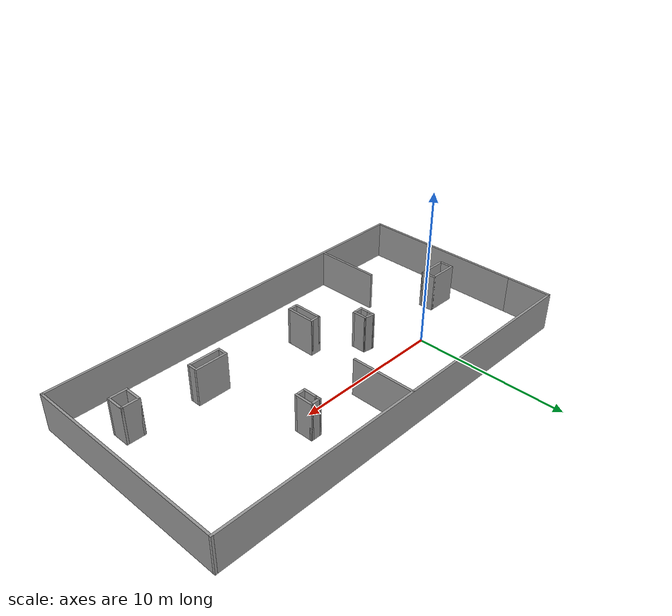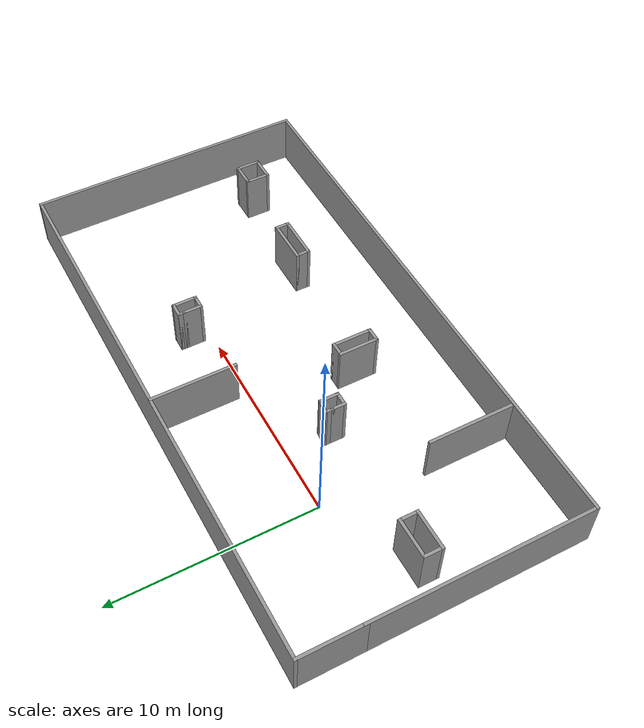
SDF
<?xml version='1.0'?>
<sdf version='1.6'>
  <model name='my_project_world'>
    <pose frame=''>7.04567 -2.25162 0 0 -0 0</pose>
    <link name='Wall_0'>
      <collision name='Wall_0_Collision'>
        <geometry>
          <box>
            <size>11 0.15 2.5</size>
          </box>
        </geometry>
        <pose frame=''>0 0 1.25 0 -0 0</pose>
      </collision>
      <visual name='Wall_0_Visual'>
        <pose frame=''>0 0 1.25 0 -0 0</pose>
        <geometry>
          <box>
            <size>11 0.15 2.5</size>
          </box>
        </geometry>
        <material>
          <script>
            <uri>file://media/materials/scripts/gazebo.material</uri>
            <name>Gazebo/Grey</name>
          </script>
          <ambient>1 1 1 1</ambient>
        </material>
      </visual>
      <pose frame=''>-13.55 -1.5 0 0 0 -1.5708</pose>
    </link>
    <link name='Wall_1'>
      <collision name='Wall_1_Collision'>
        <geometry>
          <box>
            <size>27.25 0.15 2.5</size>
          </box>
        </geometry>
        <pose frame=''>0 0 1.25 0 -0 0</pose>
      </collision>
      <visual name='Wall_1_Visual'>
        <pose frame=''>0 0 1.25 0 -0 0</pose>
        <geometry>
          <box>
            <size>27.25 0.15 2.5</size>
          </box>
        </geometry>
        <material>
          <script>
            <uri>file://media/materials/scripts/gazebo.material</uri>
            <name>Gazebo/Grey</name>
          </script>
          <ambient>1 1 1 1</ambient>
        </material>
      </visual>
      <pose frame=''>0 -6.925 0 0 -0 0</pose>
    </link>
    <link name='Wall_10'>
      <collision name='Wall_10_Collision'>
        <geometry>
          <box>
            <size>1 0.15 2.5</size>
          </box>
        </geometry>
        <pose frame=''>0 0 1.25 0 -0 0</pose>
      </collision>
      <visual name='Wall_10_Visual'>
        <pose frame=''>0 0 1.25 0 -0 0</pose>
        <geometry>
          <box>
            <size>1 0.15 2.5</size>
          </box>
        </geometry>
        <material>
          <script>
            <uri>file://media/materials/scripts/gazebo.material</uri>
            <name>Gazebo/Grey</name>
          </script>
          <ambient>1 1 1 1</ambient>
        </material>
      </visual>
      <pose frame=''>3.70507 3.12833 0 0 -0 1.5708</pose>
    </link>
    <link name='Wall_11'>
      <collision name='Wall_11_Collision'>
        <geometry>
          <box>
            <size>0.15 0.15 2.5</size>
          </box>
        </geometry>
        <pose frame=''>0 0 1.25 0 -0 0</pose>
      </collision>
      <visual name='Wall_11_Visual'>
        <pose frame=''>0 0 1.25 0 -0 0</pose>
        <geometry>
          <box>
            <size>0.15 0.15 2.5</size>
          </box>
        </geometry>
        <material>
          <script>
            <uri>file://media/materials/scripts/gazebo.material</uri>
            <name>Gazebo/Grey</name>
          </script>
          <ambient>1 1 1 1</ambient>
        </material>
      </visual>
      <pose frame=''>3.70507 3.55333 0 0 -0 0</pose>
    </link>
    <link name='Wall_13'>
      <collision name='Wall_13_Collision'>
        <geometry>
          <box>
            <size>0.75 0.15 2.5</size>
          </box>
        </geometry>
        <pose frame=''>0 0 1.25 0 -0 0</pose>
      </collision>
      <visual name='Wall_13_Visual'>
        <pose frame=''>0 0 1.25 0 -0 0</pose>
        <geometry>
          <box>
            <size>0.75 0.15 2.5</size>
          </box>
        </geometry>
        <material>
          <script>
            <uri>file://media/materials/scripts/gazebo.material</uri>
            <name>Gazebo/Grey</name>
          </script>
          <ambient>1 1 1 1</ambient>
        </material>
      </visual>
      <pose frame=''>4.00507 3.80333 0 0 -0 3.14159</pose>
    </link>
    <link name='Wall_14'>
      <collision name='Wall_14_Collision'>
        <geometry>
          <box>
            <size>0.4 0.15 2.5</size>
          </box>
        </geometry>
        <pose frame=''>0 0 1.25 0 -0 0</pose>
      </collision>
      <visual name='Wall_14_Visual'>
        <pose frame=''>0 0 1.25 0 -0 0</pose>
        <geometry>
          <box>
            <size>0.4 0.15 2.5</size>
          </box>
        </geometry>
        <material>
          <script>
            <uri>file://media/materials/scripts/gazebo.material</uri>
            <name>Gazebo/Grey</name>
          </script>
          <ambient>1 1 1 1</ambient>
        </material>
      </visual>
      <pose frame=''>3.70507 3.67833 0 0 0 -1.5708</pose>
    </link>
    <link name='Wall_16'>
      <collision name='Wall_16_Collision'>
        <geometry>
          <box>
            <size>2 0.15 2.5</size>
          </box>
        </geometry>
        <pose frame=''>0 0 1.25 0 -0 0</pose>
      </collision>
      <visual name='Wall_16_Visual'>
        <pose frame=''>0 0 1.25 0 -0 0</pose>
        <geometry>
          <box>
            <size>2 0.15 2.5</size>
          </box>
        </geometry>
        <material>
          <script>
            <uri>file://media/materials/scripts/gazebo.material</uri>
            <name>Gazebo/Grey</name>
          </script>
          <ambient>1 1 1 1</ambient>
        </material>
      </visual>
      <pose frame=''>-1.19928 -2.57426 0 0 0 -1.5708</pose>
    </link>
    <link name='Wall_17'>
      <collision name='Wall_17_Collision'>
        <geometry>
          <box>
            <size>0.75 0.15 2.5</size>
          </box>
        </geometry>
        <pose frame=''>0 0 1.25 0 -0 0</pose>
      </collision>
      <visual name='Wall_17_Visual'>
        <pose frame=''>0 0 1.25 0 -0 0</pose>
        <geometry>
          <box>
            <size>0.75 0.15 2.5</size>
          </box>
        </geometry>
        <material>
          <script>
            <uri>file://media/materials/scripts/gazebo.material</uri>
            <name>Gazebo/Grey</name>
          </script>
          <ambient>1 1 1 1</ambient>
        </material>
      </visual>
      <pose frame=''>-1.49928 -3.49926 0 0 -0 3.14159</pose>
    </link>
    <link name='Wall_18'>
      <collision name='Wall_18_Collision'>
        <geometry>
          <box>
            <size>2 0.15 2.5</size>
          </box>
        </geometry>
        <pose frame=''>0 0 1.25 0 -0 0</pose>
      </collision>
      <visual name='Wall_18_Visual'>
        <pose frame=''>0 0 1.25 0 -0 0</pose>
        <geometry>
          <box>
            <size>2 0.15 2.5</size>
          </box>
        </geometry>
        <material>
          <script>
            <uri>file://media/materials/scripts/gazebo.material</uri>
            <name>Gazebo/Grey</name>
          </script>
          <ambient>1 1 1 1</ambient>
        </material>
      </visual>
      <pose frame=''>-1.79928 -2.57426 0 0 -0 1.5708</pose>
    </link>
    <link name='Wall_19'>
      <collision name='Wall_19_Collision'>
        <geometry>
          <box>
            <size>0.75 0.15 2.5</size>
          </box>
        </geometry>
        <pose frame=''>0 0 1.25 0 -0 0</pose>
      </collision>
      <visual name='Wall_19_Visual'>
        <pose frame=''>0 0 1.25 0 -0 0</pose>
        <geometry>
          <box>
            <size>0.75 0.15 2.5</size>
          </box>
        </geometry>
        <material>
          <script>
            <uri>file://media/materials/scripts/gazebo.material</uri>
            <name>Gazebo/Grey</name>
          </script>
          <ambient>1 1 1 1</ambient>
        </material>
      </visual>
      <pose frame=''>-1.49928 -1.64926 0 0 -0 0</pose>
    </link>
    <link name='Wall_2'>
      <collision name='Wall_2_Collision'>
        <geometry>
          <box>
            <size>14 0.15 2.5</size>
          </box>
        </geometry>
        <pose frame=''>0 0 1.25 0 -0 0</pose>
      </collision>
      <visual name='Wall_2_Visual'>
        <pose frame=''>0 0 1.25 0 -0 0</pose>
        <geometry>
          <box>
            <size>14 0.15 2.5</size>
          </box>
        </geometry>
        <material>
          <script>
            <uri>file://media/materials/scripts/gazebo.material</uri>
            <name>Gazebo/Grey</name>
          </script>
          <ambient>1 1 1 1</ambient>
        </material>
      </visual>
      <pose frame=''>13.55 0 0 0 -0 1.5708</pose>
    </link>
    <link name='Wall_21'>
      <collision name='Wall_21_Collision'>
        <geometry>
          <box>
            <size>0.75 0.15 2.5</size>
          </box>
        </geometry>
        <pose frame=''>0 0 1.25 0 -0 0</pose>
      </collision>
      <visual name='Wall_21_Visual'>
        <pose frame=''>0 0 1.25 0 -0 0</pose>
        <geometry>
          <box>
            <size>0.75 0.15 2.5</size>
          </box>
        </geometry>
        <material>
          <script>
            <uri>file://media/materials/scripts/gazebo.material</uri>
            <name>Gazebo/Grey</name>
          </script>
          <ambient>1 1 1 1</ambient>
        </material>
      </visual>
      <pose frame=''>6.58786 -3.07984 0 0 0 -1.5708</pose>
    </link>
    <link name='Wall_22'>
      <collision name='Wall_22_Collision'>
        <geometry>
          <box>
            <size>2.25 0.15 2.5</size>
          </box>
        </geometry>
        <pose frame=''>0 0 1.25 0 -0 0</pose>
      </collision>
      <visual name='Wall_22_Visual'>
        <pose frame=''>0 0 1.25 0 -0 0</pose>
        <geometry>
          <box>
            <size>2.25 0.15 2.5</size>
          </box>
        </geometry>
        <material>
          <script>
            <uri>file://media/materials/scripts/gazebo.material</uri>
            <name>Gazebo/Grey</name>
          </script>
          <ambient>1 1 1 1</ambient>
        </material>
      </visual>
      <pose frame=''>5.53787 -3.37983 0 0 -0 3.14159</pose>
    </link>
    <link name='Wall_23'>
      <collision name='Wall_23_Collision'>
        <geometry>
          <box>
            <size>0.75 0.15 2.5</size>
          </box>
        </geometry>
        <pose frame=''>0 0 1.25 0 -0 0</pose>
      </collision>
      <visual name='Wall_23_Visual'>
        <pose frame=''>0 0 1.25 0 -0 0</pose>
        <geometry>
          <box>
            <size>0.75 0.15 2.5</size>
          </box>
        </geometry>
        <material>
          <script>
            <uri>file://media/materials/scripts/gazebo.material</uri>
            <name>Gazebo/Grey</name>
          </script>
          <ambient>1 1 1 1</ambient>
        </material>
      </visual>
      <pose frame=''>4.48787 -3.07984 0 0 -0 1.5708</pose>
    </link>
    <link name='Wall_24'>
      <collision name='Wall_24_Collision'>
        <geometry>
          <box>
            <size>2.25 0.15 2.5</size>
          </box>
        </geometry>
        <pose frame=''>0 0 1.25 0 -0 0</pose>
      </collision>
      <visual name='Wall_24_Visual'>
        <pose frame=''>0 0 1.25 0 -0 0</pose>
        <geometry>
          <box>
            <size>2.25 0.15 2.5</size>
          </box>
        </geometry>
        <material>
          <script>
            <uri>file://media/materials/scripts/gazebo.material</uri>
            <name>Gazebo/Grey</name>
          </script>
          <ambient>1 1 1 1</ambient>
        </material>
      </visual>
      <pose frame=''>5.53787 -2.77983 0 0 -0 0</pose>
    </link>
    <link name='Wall_26'>
      <collision name='Wall_26_Collision'>
        <geometry>
          <box>
            <size>2 0.15 2.5</size>
          </box>
        </geometry>
        <pose frame=''>0 0 1.25 0 -0 0</pose>
      </collision>
      <visual name='Wall_26_Visual'>
        <pose frame=''>0 0 1.25 0 -0 0</pose>
        <geometry>
          <box>
            <size>2 0.15 2.5</size>
          </box>
        </geometry>
        <material>
          <script>
            <uri>file://media/materials/scripts/gazebo.material</uri>
            <name>Gazebo/Grey</name>
          </script>
          <ambient>1 1 1 1</ambient>
        </material>
      </visual>
      <pose frame=''>-11.2466 0.443354 0 0 -0 0</pose>
    </link>
    <link name='Wall_27'>
      <collision name='Wall_27_Collision'>
        <geometry>
          <box>
            <size>1 0.15 2.5</size>
          </box>
        </geometry>
        <pose frame=''>0 0 1.25 0 -0 0</pose>
      </collision>
      <visual name='Wall_27_Visual'>
        <pose frame=''>0 0 1.25 0 -0 0</pose>
        <geometry>
          <box>
            <size>1 0.15 2.5</size>
          </box>
        </geometry>
        <material>
          <script>
            <uri>file://media/materials/scripts/gazebo.material</uri>
            <name>Gazebo/Grey</name>
          </script>
          <ambient>1 1 1 1</ambient>
        </material>
      </visual>
      <pose frame=''>-10.3216 0.018353 0 0 0 -1.5708</pose>
    </link>
    <link name='Wall_28'>
      <collision name='Wall_28_Collision'>
        <geometry>
          <box>
            <size>2 0.15 2.5</size>
          </box>
        </geometry>
        <pose frame=''>0 0 1.25 0 -0 0</pose>
      </collision>
      <visual name='Wall_28_Visual'>
        <pose frame=''>0 0 1.25 0 -0 0</pose>
        <geometry>
          <box>
            <size>2 0.15 2.5</size>
          </box>
        </geometry>
        <material>
          <script>
            <uri>file://media/materials/scripts/gazebo.material</uri>
            <name>Gazebo/Grey</name>
          </script>
          <ambient>1 1 1 1</ambient>
        </material>
      </visual>
      <pose frame=''>-11.2466 -0.406646 0 0 -0 3.14159</pose>
    </link>
    <link name='Wall_29'>
      <collision name='Wall_29_Collision'>
        <geometry>
          <box>
            <size>1 0.15 2.5</size>
          </box>
        </geometry>
        <pose frame=''>0 0 1.25 0 -0 0</pose>
      </collision>
      <visual name='Wall_29_Visual'>
        <pose frame=''>0 0 1.25 0 -0 0</pose>
        <geometry>
          <box>
            <size>1 0.15 2.5</size>
          </box>
        </geometry>
        <material>
          <script>
            <uri>file://media/materials/scripts/gazebo.material</uri>
            <name>Gazebo/Grey</name>
          </script>
          <ambient>1 1 1 1</ambient>
        </material>
      </visual>
      <pose frame=''>-12.1716 0.018353 0 0 -0 1.5708</pose>
    </link>
    <link name='Wall_3'>
      <collision name='Wall_3_Collision'>
        <geometry>
          <box>
            <size>27.25 0.15 2.5</size>
          </box>
        </geometry>
        <pose frame=''>0 0 1.25 0 -0 0</pose>
      </collision>
      <visual name='Wall_3_Visual'>
        <pose frame=''>0 0 1.25 0 -0 0</pose>
        <geometry>
          <box>
            <size>27.25 0.15 2.5</size>
          </box>
        </geometry>
        <material>
          <script>
            <uri>file://media/materials/scripts/gazebo.material</uri>
            <name>Gazebo/Grey</name>
          </script>
          <ambient>1 1 1 1</ambient>
        </material>
      </visual>
      <pose frame=''>0 6.925 0 0 -0 3.14159</pose>
    </link>
    <link name='Wall_31'>
      <collision name='Wall_31_Collision'>
        <geometry>
          <box>
            <size>4.25 0.15 2.5</size>
          </box>
        </geometry>
        <pose frame=''>0 0 1.25 0 -0 0</pose>
      </collision>
      <visual name='Wall_31_Visual'>
        <pose frame=''>0 0 1.25 0 -0 0</pose>
        <geometry>
          <box>
            <size>4.25 0.15 2.5</size>
          </box>
        </geometry>
        <material>
          <script>
            <uri>file://media/materials/scripts/gazebo.material</uri>
            <name>Gazebo/Grey</name>
          </script>
          <ambient>1 1 1 1</ambient>
        </material>
      </visual>
      <pose frame=''>-0.147983 4.85619 0 0 0 -1.5708</pose>
    </link>
    <link name='Wall_33'>
      <collision name='Wall_33_Collision'>
        <geometry>
          <box>
            <size>1 0.15 2.5</size>
          </box>
        </geometry>
        <pose frame=''>0 0 1.25 0 -0 0</pose>
      </collision>
      <visual name='Wall_33_Visual'>
        <pose frame=''>0 0 1.25 0 -0 0</pose>
        <geometry>
          <box>
            <size>1 0.15 2.5</size>
          </box>
        </geometry>
        <material>
          <script>
            <uri>file://media/materials/scripts/gazebo.material</uri>
            <name>Gazebo/Grey</name>
          </script>
          <ambient>1 1 1 1</ambient>
        </material>
      </visual>
      <pose frame=''>-3.67465 -0.007872 0 0 0 -1.5708</pose>
    </link>
    <link name='Wall_34'>
      <collision name='Wall_34_Collision'>
        <geometry>
          <box>
            <size>0.75 0.15 2.5</size>
          </box>
        </geometry>
        <pose frame=''>0 0 1.25 0 -0 0</pose>
      </collision>
      <visual name='Wall_34_Visual'>
        <pose frame=''>0 0 1.25 0 -0 0</pose>
        <geometry>
          <box>
            <size>0.75 0.15 2.5</size>
          </box>
        </geometry>
        <material>
          <script>
            <uri>file://media/materials/scripts/gazebo.material</uri>
            <name>Gazebo/Grey</name>
          </script>
          <ambient>1 1 1 1</ambient>
        </material>
      </visual>
      <pose frame=''>-3.97465 -0.432873 0 0 -0 3.14159</pose>
    </link>
    <link name='Wall_35'>
      <collision name='Wall_35_Collision'>
        <geometry>
          <box>
            <size>0.75 0.15 2.5</size>
          </box>
        </geometry>
        <pose frame=''>0 0 1.25 0 -0 0</pose>
      </collision>
      <visual name='Wall_35_Visual'>
        <pose frame=''>0 0 1.25 0 -0 0</pose>
        <geometry>
          <box>
            <size>0.75 0.15 2.5</size>
          </box>
        </geometry>
        <material>
          <script>
            <uri>file://media/materials/scripts/gazebo.material</uri>
            <name>Gazebo/Grey</name>
          </script>
          <ambient>1 1 1 1</ambient>
        </material>
      </visual>
      <pose frame=''>-4.27465 -0.132872 0 0 -0 1.5708</pose>
    </link>
    <link name='Wall_36'>
      <collision name='Wall_36_Collision'>
        <geometry>
          <box>
            <size>0.5 0.15 2.5</size>
          </box>
        </geometry>
        <pose frame=''>0 0 1.25 0 -0 0</pose>
      </collision>
      <visual name='Wall_36_Visual'>
        <pose frame=''>0 0 1.25 0 -0 0</pose>
        <geometry>
          <box>
            <size>0.5 0.15 2.5</size>
          </box>
        </geometry>
        <material>
          <script>
            <uri>file://media/materials/scripts/gazebo.material</uri>
            <name>Gazebo/Grey</name>
          </script>
          <ambient>1 1 1 1</ambient>
        </material>
      </visual>
      <pose frame=''>-4.27465 0.342128 0 0 -0 1.5708</pose>
    </link>
    <link name='Wall_37'>
      <collision name='Wall_37_Collision'>
        <geometry>
          <box>
            <size>0.758276 0.15 2.5</size>
          </box>
        </geometry>
        <pose frame=''>0 0 1.25 0 -0 0</pose>
      </collision>
      <visual name='Wall_37_Visual'>
        <pose frame=''>0 0 1.25 0 -0 0</pose>
        <geometry>
          <box>
            <size>0.758276 0.15 2.5</size>
          </box>
        </geometry>
        <material>
          <script>
            <uri>file://media/materials/scripts/gazebo.material</uri>
            <name>Gazebo/Grey</name>
          </script>
          <ambient>1 1 1 1</ambient>
        </material>
      </visual>
      <pose frame=''>-3.97465 0.467128 0 0 0 -0.165149</pose>
    </link>
    <link name='Wall_39'>
      <collision name='Wall_39_Collision'>
        <geometry>
          <box>
            <size>1.25 0.15 2.5</size>
          </box>
        </geometry>
        <pose frame=''>0 0 1.25 0 -0 0</pose>
      </collision>
      <visual name='Wall_39_Visual'>
        <pose frame=''>0 0 1.25 0 -0 0</pose>
        <geometry>
          <box>
            <size>1.25 0.15 2.5</size>
          </box>
        </geometry>
        <material>
          <script>
            <uri>file://media/materials/scripts/gazebo.material</uri>
            <name>Gazebo/Grey</name>
          </script>
          <ambient>1 1 1 1</ambient>
        </material>
      </visual>
      <pose frame=''>11.3193 -3.53631 0 0 0 -1.5708</pose>
    </link>
    <link name='Wall_4'>
      <collision name='Wall_4_Collision'>
        <geometry>
          <box>
            <size>3.25 0.15 2.5</size>
          </box>
        </geometry>
        <pose frame=''>0 0 1.25 0 -0 0</pose>
      </collision>
      <visual name='Wall_4_Visual'>
        <pose frame=''>0 0 1.25 0 -0 0</pose>
        <geometry>
          <box>
            <size>3.25 0.15 2.5</size>
          </box>
        </geometry>
        <material>
          <script>
            <uri>file://media/materials/scripts/gazebo.material</uri>
            <name>Gazebo/Grey</name>
          </script>
          <ambient>1 1 1 1</ambient>
        </material>
      </visual>
      <pose frame=''>-13.55 5.375 0 0 0 -1.5708</pose>
    </link>
    <link name='Wall_40'>
      <collision name='Wall_40_Collision'>
        <geometry>
          <box>
            <size>1.25 0.15 2.5</size>
          </box>
        </geometry>
        <pose frame=''>0 0 1.25 0 -0 0</pose>
      </collision>
      <visual name='Wall_40_Visual'>
        <pose frame=''>0 0 1.25 0 -0 0</pose>
        <geometry>
          <box>
            <size>1.25 0.15 2.5</size>
          </box>
        </geometry>
        <material>
          <script>
            <uri>file://media/materials/scripts/gazebo.material</uri>
            <name>Gazebo/Grey</name>
          </script>
          <ambient>1 1 1 1</ambient>
        </material>
      </visual>
      <pose frame=''>10.7693 -4.08631 0 0 -0 3.14159</pose>
    </link>
    <link name='Wall_41'>
      <collision name='Wall_41_Collision'>
        <geometry>
          <box>
            <size>1.25 0.15 2.5</size>
          </box>
        </geometry>
        <pose frame=''>0 0 1.25 0 -0 0</pose>
      </collision>
      <visual name='Wall_41_Visual'>
        <pose frame=''>0 0 1.25 0 -0 0</pose>
        <geometry>
          <box>
            <size>1.25 0.15 2.5</size>
          </box>
        </geometry>
        <material>
          <script>
            <uri>file://media/materials/scripts/gazebo.material</uri>
            <name>Gazebo/Grey</name>
          </script>
          <ambient>1 1 1 1</ambient>
        </material>
      </visual>
      <pose frame=''>10.2193 -3.53631 0 0 -0 1.5708</pose>
    </link>
    <link name='Wall_42'>
      <collision name='Wall_42_Collision'>
        <geometry>
          <box>
            <size>1.25 0.15 2.5</size>
          </box>
        </geometry>
        <pose frame=''>0 0 1.25 0 -0 0</pose>
      </collision>
      <visual name='Wall_42_Visual'>
        <pose frame=''>0 0 1.25 0 -0 0</pose>
        <geometry>
          <box>
            <size>1.25 0.15 2.5</size>
          </box>
        </geometry>
        <material>
          <script>
            <uri>file://media/materials/scripts/gazebo.material</uri>
            <name>Gazebo/Grey</name>
          </script>
          <ambient>1 1 1 1</ambient>
        </material>
      </visual>
      <pose frame=''>10.7693 -2.98631 0 0 -0 0</pose>
    </link>
    <link name='Wall_44'>
      <collision name='Wall_44_Collision'>
        <geometry>
          <box>
            <size>4.25 0.15 2.5</size>
          </box>
        </geometry>
        <pose frame=''>0 0 1.25 0 -0 0</pose>
      </collision>
      <visual name='Wall_44_Visual'>
        <pose frame=''>0 0 1.25 0 -0 0</pose>
        <geometry>
          <box>
            <size>4.25 0.15 2.5</size>
          </box>
        </geometry>
        <material>
          <script>
            <uri>file://media/materials/scripts/gazebo.material</uri>
            <name>Gazebo/Grey</name>
          </script>
          <ambient>1 1 1 1</ambient>
        </material>
      </visual>
      <pose frame=''>-7.7027 -4.71154 0 0 0 -1.5708</pose>
    </link>
    <link name='Wall_8'>
      <collision name='Wall_8_Collision'>
        <geometry>
          <box>
            <size>1.25 0.15 2.5</size>
          </box>
        </geometry>
        <pose frame=''>0 0 1.25 0 -0 0</pose>
      </collision>
      <visual name='Wall_8_Visual'>
        <pose frame=''>0 0 1.25 0 -0 0</pose>
        <geometry>
          <box>
            <size>1.25 0.15 2.5</size>
          </box>
        </geometry>
        <material>
          <script>
            <uri>file://media/materials/scripts/gazebo.material</uri>
            <name>Gazebo/Grey</name>
          </script>
          <ambient>1 1 1 1</ambient>
        </material>
      </visual>
      <pose frame=''>4.30507 3.25333 0 0 0 -1.5708</pose>
    </link>
    <link name='Wall_9'>
      <collision name='Wall_9_Collision'>
        <geometry>
          <box>
            <size>0.75 0.15 2.5</size>
          </box>
        </geometry>
        <pose frame=''>0 0 1.25 0 -0 0</pose>
      </collision>
      <visual name='Wall_9_Visual'>
        <pose frame=''>0 0 1.25 0 -0 0</pose>
        <geometry>
          <box>
            <size>0.75 0.15 2.5</size>
          </box>
        </geometry>
        <material>
          <script>
            <uri>file://media/materials/scripts/gazebo.material</uri>
            <name>Gazebo/Grey</name>
          </script>
          <ambient>1 1 1 1</ambient>
        </material>
      </visual>
      <pose frame=''>4.00507 2.70333 0 0 -0 3.14159</pose>
    </link>
    <static>1</static>
  </model>
</sdf>
